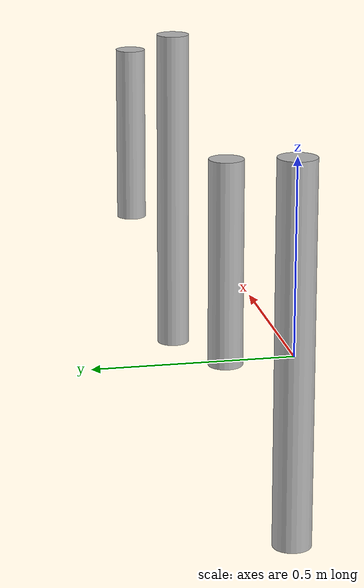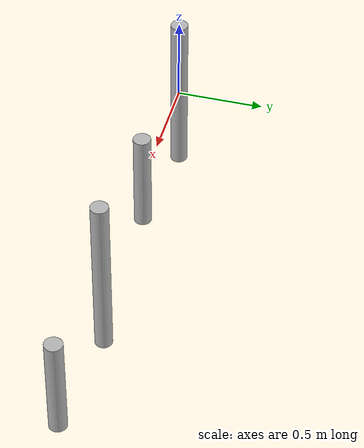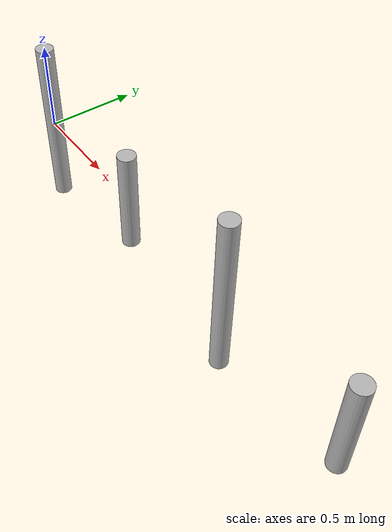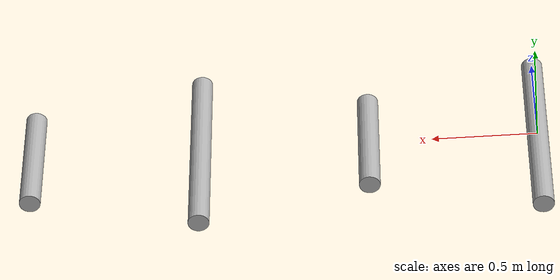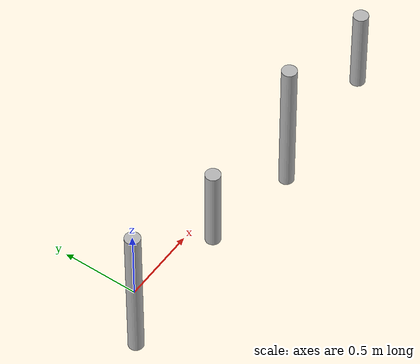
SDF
<sdf version="1.6">
  <model name="parallelogram">
    <link name="link_A1">
      <pose>0 0 0 0 0 0</pose>
      <inertial>
        <pose>0 0 0 0 0 0</pose>
        <mass>10</mass>
        <inertia>
          <ixx>0.008416666667</ixx>
          <iyy>0.841666666667</iyy>
          <izz>0.833416666667</izz>
          <ixy>0.</ixy>
          <ixz>0.</ixz>
          <iyz>0.</iyz>
        </inertia>
      </inertial>
      <visual name="link_A1_visual">
        <geometry>
          <cylinder>
            <length>1.0</length>
            <radius>0.05</radius>
          </cylinder>
        </geometry>
      </visual>
    </link>

    <link name="link_B1">
      <pose>0.8 0 0 0 0 0</pose>
      <inertial>
        <pose>0 0 0 0 0 0</pose>
        <mass>5</mass>
        <inertia>
          <ixx>0.0042083333333</ixx>
          <iyy>0.1541666666667</iyy>
          <izz>0.1500416666667</izz>
          <ixy>0</ixy>
          <ixz>0</ixz>
          <iyz>0</iyz>
        </inertia>
      </inertial>
      <visual name="link_B1_visual">
        <geometry>
          <cylinder>
            <length>0.6</length>
            <radius>0.05</radius>
          </cylinder>
        </geometry>
      </visual>
    </link>

    <link name="link_A2">
      <pose>1.6 0 0 0 0 0</pose>
      <inertial>
        <pose>0 0 0 0 0 0</pose>
        <mass>10</mass>
        <inertia>
          <ixx>0.008416666667</ixx>
          <iyy>0.841666666667</iyy>
          <izz>0.833416666667</izz>
          <ixy>0.</ixy>
          <ixz>0.</ixz>
          <iyz>0.</iyz>
        </inertia>
      </inertial>
      <visual name="link_A2_visual">
        <geometry>
          <cylinder>
            <length>1.0</length>
            <radius>0.05</radius>
          </cylinder>
        </geometry>
      </visual>
    </link>

    <link name="link_B2">
      <pose>2.4 0 0 0 0 0</pose>
      <inertial>
        <pose>0 0 0 0 0 0</pose>
        <mass>5</mass>
        <inertia>
          <ixx>0.0042083333333</ixx>
          <iyy>0.1541666666667</iyy>
          <izz>0.1500416666667</izz>
          <ixy>0</ixy>
          <ixz>0</ixz>
          <iyz>0</iyz>
        </inertia>
      </inertial>
      <visual name="link_B2_visual">
        <geometry>
          <cylinder>
            <length>0.6</length>
            <radius>0.05</radius>
          </cylinder>
        </geometry>
      </visual>
    </link>

    <joint name="joint_B1" type="revolute">
      <pose>-0.3 0 0 0 0 0</pose>
      <child>link_B1</child>
      <parent>link_A1</parent>
      <axis>
        <xyz>0 1 0</xyz>
        <use_parent_model_frame>1</use_parent_model_frame>
      </axis>
    </joint>

    <joint name="joint_A2" type="revolute">
      <pose>-0.5 0 0 0 0 0</pose>
      <child>link_A2</child>
      <parent>link_B1</parent>
      <axis>
        <xyz>0 1 0</xyz>
        <use_parent_model_frame>1</use_parent_model_frame>
      </axis>
    </joint>

    <joint name="joint_B2" type="revolute">
      <pose>-0.3 0 0 0 0 0</pose>
      <child>link_B2</child>
      <parent>link_A2</parent>
      <axis>
        <xyz>0 1 0</xyz>
        <use_parent_model_frame>1</use_parent_model_frame>
      </axis>
    </joint>

  </model>
</sdf>
